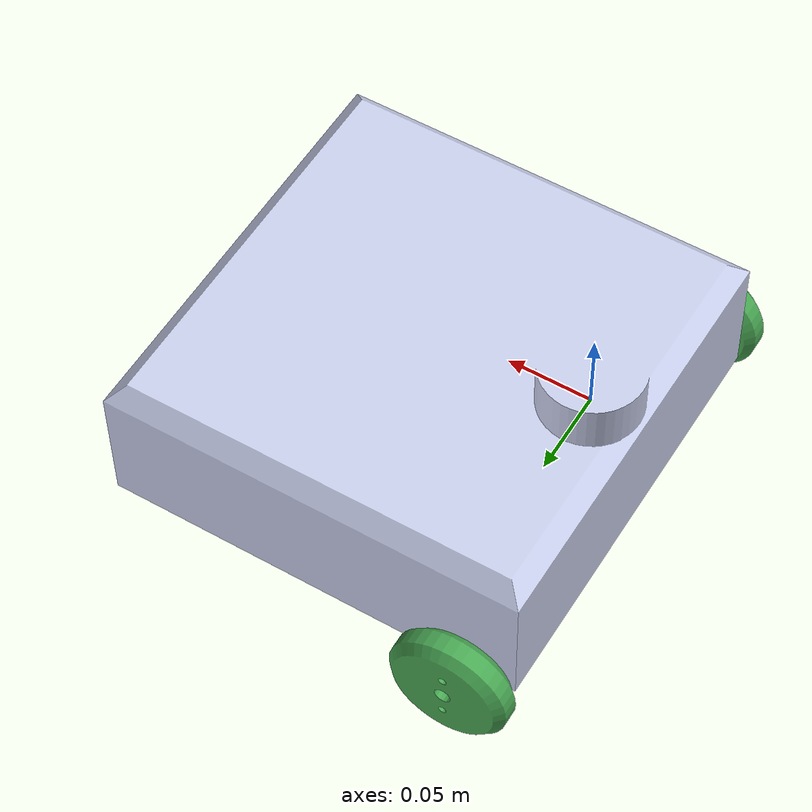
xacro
<?xml version='1.0'?>
<robot
  name="minibot" xmlns:xacro="http://www.ros.org/wiki/xacro">

  <xacro:include filename="$(find minibot)/robots/minibot.gazebo" />
  <xacro:include filename="$(find minibot)/robots/materials.xacro" />

  <link
    name="base_link">
    <inertial>
      <origin
        xyz="0.097204 5.5511E-17 -0.049199"
        rpy="0 0 0" />
      <mass
        value="3" />
      <inertia
        ixx="0.040304"
        ixy="4.9362E-18"
        ixz="0.00066866"
        iyy="0.041109"
        iyz="1.1589E-18"
        izz="0.07014" />
    </inertial>
    <visual>
      <origin
        xyz="0 0 0"
        rpy="0 0 0" />
      <geometry>
        <mesh
          filename="package://minibot/meshes/base_link.STL" />
      </geometry>
      <material
        name="">
        <color
          rgba="0.79216 0.81961 0.93333 1" />
      </material>
    </visual>
    <collision name='caster_collision'>
      <origin
        xyz="0 0 0"
        rpy="0 0 0" />
      <geometry>
        <mesh
          filename="package://minibot/meshes/base_link.STL" />
      </geometry>

      <surface>
        <friction>
          <ode>
            <mu>0</mu>
            <mu2>0</mu2>
            <slip1>1.0</slip1>
            <slip2>1.0</slip2>
          </ode>
        </friction>
      </surface>

    </collision>
  </link>
  <link
    name="l_wh">
    <inertial>
      <origin
        xyz="-1.3878E-17 -0.01 -2.7756E-17"
        rpy="0 0 0" />
      <mass
        value="0.3" />
      <inertia
        ixx="2.5261E-05"
        ixy="2.7793E-22"
        ixz="4.1451E-23"
        iyy="4.6188E-05"
        iyz="-8.0779E-25"
        izz="2.5438E-05" />
    </inertial>
    <visual>
      <origin
        xyz="0 0 0"
        rpy="0 0 0" />
      <geometry>
        <mesh
          filename="package://minibot/meshes/l_wh.STL" />
      </geometry>
      <material
        name="">
        <color
          rgba="0.28627 0.66275 0.32941 1" />
      </material>
    </visual>
    <collision>
      <origin
        xyz="0 0 0"
        rpy="0 0 0" />
      <geometry>
        <mesh
          filename="package://minibot/meshes/l_wh.STL" />
      </geometry>
    </collision>
  </link>
  <joint
    name="l_joint"
    type="continuous">
    <origin
      xyz="0 -0.153 -0.084"
      rpy="0 0 3.1416" />
    <parent
      link="base_link" />
    <child
      link="l_wh" />
    <axis
      xyz="0 1 0" />
  </joint>
  <link
    name="r_wh">
    <inertial>
      <origin
        xyz="0 0.01 2.7756E-17"
        rpy="0 0 0" />
      <mass
        value="0.3" />
      <inertia
        ixx="2.5261E-05"
        ixy="2.8014E-22"
        ixz="4.1451E-23"
        iyy="4.6188E-05"
        iyz="6.5376E-39"
        izz="2.5438E-05" />
    </inertial>
    <visual>
      <origin
        xyz="0 0 0"
        rpy="0 0 0" />
      <geometry>
        <mesh
          filename="package://minibot/meshes/r_wh.STL" />
      </geometry>
      <material
        name="">
        <color
          rgba="0.28627 0.66275 0.32941 1" />
      </material>
    </visual>
    <collision>
      <origin
        xyz="0 0 0"
        rpy="0 0 0" />
      <geometry>
        <mesh
          filename="package://minibot/meshes/r_wh.STL" />
      </geometry>
    </collision>
  </link>
  <joint
    name="r_joint"
    type="continuous">
    <origin
      xyz="0 0.153 -0.084"
      rpy="0 0 3.1416" />
    <parent
      link="base_link" />
    <child
      link="r_wh" />
    <axis
      xyz="0 1 0" />
  </joint>
</robot>
